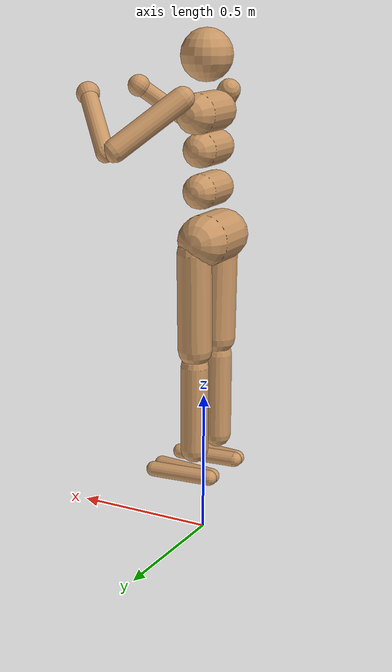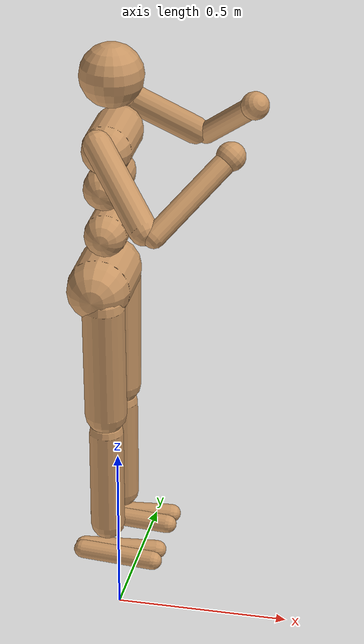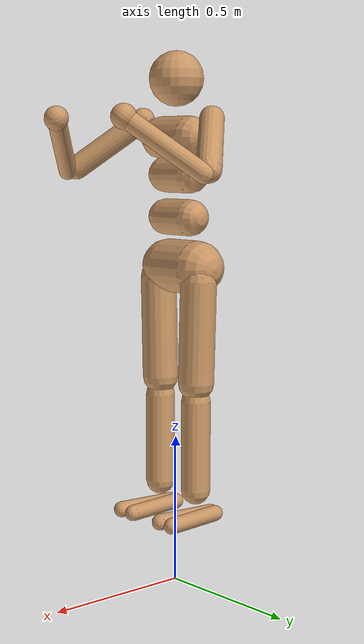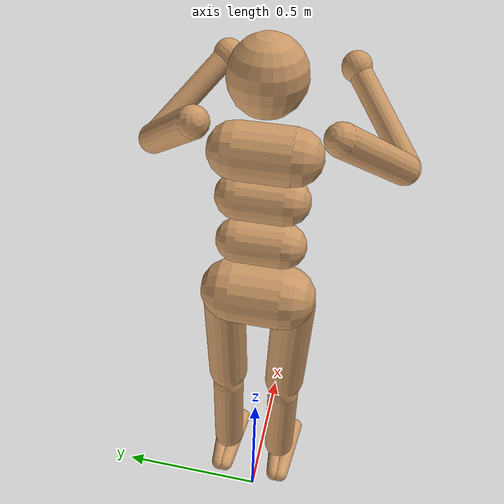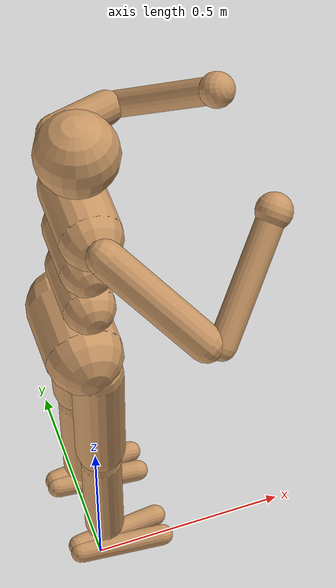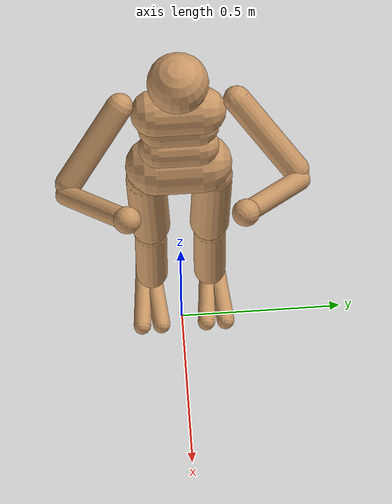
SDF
<sdf version="1.10">
  <model name='humanod_from_mjcf'>
    <static>false</static>
    <self_collide>false</self_collide>
    <allow_auto_disable>true</allow_auto_disable>
    <enable_wind>false</enable_wind>
    <pose>0 0 0 0 0 0</pose>
    <link name='torso'>
      <pose>0 0 1.5 0 0 0</pose>
      <inertial>
        <pose>-0.00386404 0 -0.0463685 0 0.083141200000000012 0</pose>
        <mass>5.8538300000000003</mass>
        <inertia>
          <ixx>0.051274199999999999</ixx>
          <ixy>0</ixy>
          <ixz>0</ixz>
          <iyy>0.031966700000000001</iyy>
          <iyz>0</iyz>
          <izz>0.031149300000000001</izz>
        </inertia>
      </inertial>
      <enable_wind>false</enable_wind>
      <collision name='collision_torso'>
        <pose>0 0 0 1.5708 0 0</pose>
        <geometry>
          <capsule>
            <radius>0.070000000000000007</radius>
            <length>0.14000000000000001</length>
          </capsule>
        </geometry>
        <surface>
          <contact>
            <collide_bitmask>255</collide_bitmask>
          </contact>
          <friction>
            <ode>
              <mu>0.69999999999999996</mu>
            </ode>
          </friction>
        </surface>
      </collision>
      <collision name='collision_upper_waist'>
        <pose>-0.01 0 -0.12 1.5708 0 0</pose>
        <geometry>
          <capsule>
            <radius>0.059999999999999998</radius>
            <length>0.12</length>
          </capsule>
        </geometry>
        <surface>
          <contact>
            <collide_bitmask>255</collide_bitmask>
          </contact>
          <friction>
            <ode>
              <mu>0.69999999999999996</mu>
            </ode>
          </friction>
        </surface>
      </collision>
      <light name='top' type='spot'>
        <pose>0 0 2 0 0 0</pose>
        <cast_shadows>false</cast_shadows>
        <intensity>1</intensity>
        <direction>0 0 -1</direction>
        <diffuse>0.699999988 0.699999988 0.699999988 1</diffuse>
        <specular>0.300000012 0.300000012 0.300000012 1</specular>
        <attenuation>
          <range>10</range>
          <linear>0</linear>
          <constant>1</constant>
          <quadratic>0</quadratic>
        </attenuation>
        <spot>
          <inner_angle>0</inner_angle>
          <outer_angle>1.5708</outer_angle>
          <falloff>2</falloff>
        </spot>
      </light>
      <sensor name='back' type='camera'>
        <pose>-3 0 1 7.8504600000000004e-17 7.8504600000000004e-17 -7.8504600000000004e-17</pose>
        <topic>__default__</topic>
        <update_rate>25</update_rate>
        <enable_metrics>false</enable_metrics>
        <camera>
          <pose>0 0 0 0 0 0</pose>
          <horizontal_fov>1.0469999999999999</horizontal_fov>
          <image>
            <width>320</width>
            <height>240</height>
            <format>RGB_INT8</format>
            <anti_aliasing>4</anti_aliasing>
          </image>
          <clip>
            <near>0.10000000000000001</near>
            <far>100</far>
          </clip>
          <save enabled='false'>
            <path>__default__</path>
          </save>
          <visibility_mask>4294967295</visibility_mask>
          <noise>
            <type>none</type>
            <mean>0</mean>
            <stddev>0</stddev>
          </noise>
          <distortion>
            <k1>0</k1>
            <k2>0</k2>
            <k3>0</k3>
            <p1>0</p1>
            <p2>0</p2>
            <center>0.5 0.5</center>
          </distortion>
          <lens>
            <type>stereographic</type>
            <scale_to_hfov>true</scale_to_hfov>
            <cutoff_angle>1.5708</cutoff_angle>
            <env_texture_size>256</env_texture_size>
          </lens>
        </camera>
      </sensor>
      <sensor name='side' type='camera'>
        <pose>0 -3 1 2.2204499999999999e-16 2.4651903288156619e-32 1.5708</pose>
        <topic>__default__</topic>
        <update_rate>25</update_rate>
        <enable_metrics>false</enable_metrics>
        <camera>
          <pose>0 0 0 0 0 0</pose>
          <horizontal_fov>1.0469999999999999</horizontal_fov>
          <image>
            <width>320</width>
            <height>240</height>
            <format>RGB_INT8</format>
            <anti_aliasing>4</anti_aliasing>
          </image>
          <clip>
            <near>0.10000000000000001</near>
            <far>100</far>
          </clip>
          <save enabled='false'>
            <path>__default__</path>
          </save>
          <visibility_mask>4294967295</visibility_mask>
          <noise>
            <type>none</type>
            <mean>0</mean>
            <stddev>0</stddev>
          </noise>
          <distortion>
            <k1>0</k1>
            <k2>0</k2>
            <k3>0</k3>
            <p1>0</p1>
            <p2>0</p2>
            <center>0.5 0.5</center>
          </distortion>
          <lens>
            <type>stereographic</type>
            <scale_to_hfov>true</scale_to_hfov>
            <cutoff_angle>1.5708</cutoff_angle>
            <env_texture_size>256</env_texture_size>
          </lens>
        </camera>
      </sensor>
      <visual name='visual_torso'>
        <pose>0 0 0 1.5708 0 0</pose>
        <geometry>
          <capsule>
            <radius>0.070000000000000007</radius>
            <length>0.14000000000000001</length>
          </capsule>
        </geometry>
        <cast_shadows>true</cast_shadows>
        <laser_retro>0</laser_retro>
        <transparency>0</transparency>
        <visibility_flags>4294967295</visibility_flags>
        <material>
          <ambient>0.800000012 0.600000024 0.400000006 1</ambient>
          <diffuse>0.800000012 0.600000024 0.400000006 1</diffuse>
          <specular>0.5 0.5 0.5 1</specular>
          <emissive>0 0 0 1</emissive>
          <render_order>0</render_order>
          <lighting>true</lighting>
          <double_sided>false</double_sided>
          <shader type='pixel'/>
        </material>
      </visual>
      <visual name='visual_upper_waist'>
        <pose>-0.01 0 -0.12 1.5708 0 0</pose>
        <geometry>
          <capsule>
            <radius>0.059999999999999998</radius>
            <length>0.12</length>
          </capsule>
        </geometry>
        <cast_shadows>true</cast_shadows>
        <laser_retro>0</laser_retro>
        <transparency>0</transparency>
        <visibility_flags>4294967295</visibility_flags>
        <material>
          <ambient>0.800000012 0.600000024 0.400000006 1</ambient>
          <diffuse>0.800000012 0.600000024 0.400000006 1</diffuse>
          <specular>0.5 0.5 0.5 1</specular>
          <emissive>0 0 0 1</emissive>
          <render_order>0</render_order>
          <lighting>true</lighting>
          <double_sided>false</double_sided>
          <shader type='pixel'/>
        </material>
      </visual>
    </link>
    <link name='head'>
      <pose relative_to='torso'>0 0 0.19 0 0 0</pose>
      <inertial>
        <pose>0 0 0 0 0 0</pose>
        <mass>3.0536300000000001</mass>
        <inertia>
          <ixx>0.0098937499999999998</ixx>
          <ixy>0</ixy>
          <ixz>0</ixz>
          <iyy>0.0098937499999999998</iyy>
          <iyz>0</iyz>
          <izz>0.0098937499999999998</izz>
        </inertia>
      </inertial>
      <enable_wind>false</enable_wind>
      <collision name='collision_head'>
        <pose>0 0 0 0 0 0</pose>
        <geometry>
          <sphere>
            <radius>0.089999999999999997</radius>
          </sphere>
        </geometry>
        <surface>
          <contact>
            <collide_bitmask>255</collide_bitmask>
          </contact>
          <friction>
            <ode>
              <mu>0.69999999999999996</mu>
            </ode>
          </friction>
        </surface>
      </collision>
      <sensor name='egocentric' type='camera'>
        <pose>0.089999999999999997 0 0 2.0641799999999998e-16 0.095166200000000006 -3.2285999999999994e-16</pose>
        <topic>__default__</topic>
        <update_rate>25</update_rate>
        <enable_metrics>false</enable_metrics>
        <camera>
          <pose>0 0 0 0 0 0</pose>
          <horizontal_fov>1.0469999999999999</horizontal_fov>
          <image>
            <width>320</width>
            <height>240</height>
            <format>RGB_INT8</format>
            <anti_aliasing>4</anti_aliasing>
          </image>
          <clip>
            <near>0.10000000000000001</near>
            <far>100</far>
          </clip>
          <save enabled='false'>
            <path>__default__</path>
          </save>
          <visibility_mask>4294967295</visibility_mask>
          <noise>
            <type>none</type>
            <mean>0</mean>
            <stddev>0</stddev>
          </noise>
          <distortion>
            <k1>0</k1>
            <k2>0</k2>
            <k3>0</k3>
            <p1>0</p1>
            <p2>0</p2>
            <center>0.5 0.5</center>
          </distortion>
          <lens>
            <type>stereographic</type>
            <scale_to_hfov>true</scale_to_hfov>
            <cutoff_angle>1.5708</cutoff_angle>
            <env_texture_size>256</env_texture_size>
          </lens>
        </camera>
      </sensor>
      <visual name='visual_head'>
        <pose>0 0 0 0 0 0</pose>
        <geometry>
          <sphere>
            <radius>0.089999999999999997</radius>
          </sphere>
        </geometry>
        <cast_shadows>true</cast_shadows>
        <laser_retro>0</laser_retro>
        <transparency>0</transparency>
        <visibility_flags>4294967295</visibility_flags>
        <material>
          <ambient>0.800000012 0.600000024 0.400000006 1</ambient>
          <diffuse>0.800000012 0.600000024 0.400000006 1</diffuse>
          <specular>0.5 0.5 0.5 1</specular>
          <emissive>0 0 0 1</emissive>
          <render_order>0</render_order>
          <lighting>true</lighting>
          <double_sided>false</double_sided>
          <shader type='pixel'/>
        </material>
      </visual>
    </link>
    <link name='lower_waist'>
      <pose relative_to='torso'>-0.01 0 -0.26000000000000001 0 0 0</pose>
      <inertial>
        <pose>0 0 0 1.5708 0 0</pose>
        <mass>2.2619500000000001</mass>
        <inertia>
          <ixx>0.0098530400000000004</ixx>
          <ixy>0</ixy>
          <ixz>0</ixz>
          <iyy>0.0098530400000000004</iyy>
          <iyz>0</iyz>
          <izz>0.0037457800000000002</izz>
        </inertia>
      </inertial>
      <enable_wind>false</enable_wind>
      <collision name='collision_lower_waist'>
        <pose>0 0 0 1.5708 0 0</pose>
        <geometry>
          <capsule>
            <radius>0.059999999999999998</radius>
            <length>0.12</length>
          </capsule>
        </geometry>
        <surface>
          <contact>
            <collide_bitmask>255</collide_bitmask>
          </contact>
          <friction>
            <ode>
              <mu>0.69999999999999996</mu>
            </ode>
          </friction>
        </surface>
      </collision>
      <visual name='visual_lower_waist'>
        <pose>0 0 0 1.5708 0 0</pose>
        <geometry>
          <capsule>
            <radius>0.059999999999999998</radius>
            <length>0.12</length>
          </capsule>
        </geometry>
        <cast_shadows>true</cast_shadows>
        <laser_retro>0</laser_retro>
        <transparency>0</transparency>
        <visibility_flags>4294967295</visibility_flags>
        <material>
          <ambient>0.800000012 0.600000024 0.400000006 1</ambient>
          <diffuse>0.800000012 0.600000024 0.400000006 1</diffuse>
          <specular>0.5 0.5 0.5 1</specular>
          <emissive>0 0 0 1</emissive>
          <render_order>0</render_order>
          <lighting>true</lighting>
          <double_sided>false</double_sided>
          <shader type='pixel'/>
        </material>
      </visual>
    </link>
    <link name='lower_waist_dummy_0'>
      <pose relative_to='lower_waist'>0 0 0 0 0 0</pose>
      <inertial>
        <pose>0 0 0 0 0 0</pose>
        <mass>9.9999999999999995e-07</mass>
        <inertia>
          <ixx>3.9999999999999998e-07</ixx>
          <ixy>0</ixy>
          <ixz>0</ixz>
          <iyy>3.9999999999999998e-07</iyy>
          <iyz>0</iyz>
          <izz>3.9999999999999998e-07</izz>
        </inertia>
      </inertial>
      <enable_wind>false</enable_wind>
    </link>
    <link name='pelvis'>
      <pose relative_to='lower_waist'>0 0 -0.16500000000000001 0 0 0</pose>
      <inertial>
        <pose>-0.02 0 0 1.5708 0 0</pose>
        <mass>6.6161899999999996</mass>
        <inertia>
          <ixx>0.052318000000000003</ixx>
          <ixy>0</ixy>
          <ixz>0</ixz>
          <iyy>0.052318000000000003</iyy>
          <iyz>0</iyz>
          <izz>0.024322099999999999</izz>
        </inertia>
      </inertial>
      <enable_wind>false</enable_wind>
      <collision name='collision_butt'>
        <pose>-0.02 0 0 1.5708 0 0</pose>
        <geometry>
          <capsule>
            <radius>0.089999999999999997</radius>
            <length>0.14000000000000001</length>
          </capsule>
        </geometry>
        <surface>
          <contact>
            <collide_bitmask>255</collide_bitmask>
          </contact>
          <friction>
            <ode>
              <mu>0.69999999999999996</mu>
            </ode>
          </friction>
        </surface>
      </collision>
      <visual name='visual_butt'>
        <pose>-0.02 0 0 1.5708 0 0</pose>
        <geometry>
          <capsule>
            <radius>0.089999999999999997</radius>
            <length>0.14000000000000001</length>
          </capsule>
        </geometry>
        <cast_shadows>true</cast_shadows>
        <laser_retro>0</laser_retro>
        <transparency>0</transparency>
        <visibility_flags>4294967295</visibility_flags>
        <material>
          <ambient>0.800000012 0.600000024 0.400000006 1</ambient>
          <diffuse>0.800000012 0.600000024 0.400000006 1</diffuse>
          <specular>0.5 0.5 0.5 1</specular>
          <emissive>0 0 0 1</emissive>
          <render_order>0</render_order>
          <lighting>true</lighting>
          <double_sided>false</double_sided>
          <shader type='pixel'/>
        </material>
      </visual>
    </link>
    <link name='right_thigh'>
      <pose relative_to='pelvis'>0 -0.10000000000000001 -0.040000000000000001 0 0 0</pose>
      <inertial>
        <pose>0 0.0050000000000000001 -0.17000000000000001 0.029403299999999997 0 0</pose>
        <mass>4.7517500000000004</mass>
        <inertia>
          <ixx>0.074951699999999996</ixx>
          <ixy>0</ixy>
          <ixz>0</ixz>
          <iyy>0.074951699999999996</iyy>
          <iyz>0</iyz>
          <izz>0.0082274300000000009</izz>
        </inertia>
      </inertial>
      <enable_wind>false</enable_wind>
      <collision name='collision_right_thigh'>
        <pose>0 0.0050000000000000001 -0.17000000000000001 0.029403299999999997 0 0</pose>
        <geometry>
          <capsule>
            <radius>0.059999999999999998</radius>
            <length>0.34014699999999998</length>
          </capsule>
        </geometry>
        <surface>
          <contact>
            <collide_bitmask>255</collide_bitmask>
          </contact>
          <friction>
            <ode>
              <mu>0.69999999999999996</mu>
            </ode>
          </friction>
        </surface>
      </collision>
      <visual name='visual_right_thigh'>
        <pose>0 0.0050000000000000001 -0.17000000000000001 0.029403299999999997 0 0</pose>
        <geometry>
          <capsule>
            <radius>0.059999999999999998</radius>
            <length>0.34014699999999998</length>
          </capsule>
        </geometry>
        <cast_shadows>true</cast_shadows>
        <laser_retro>0</laser_retro>
        <transparency>0</transparency>
        <visibility_flags>4294967295</visibility_flags>
        <material>
          <ambient>0.800000012 0.600000024 0.400000006 1</ambient>
          <diffuse>0.800000012 0.600000024 0.400000006 1</diffuse>
          <specular>0.5 0.5 0.5 1</specular>
          <emissive>0 0 0 1</emissive>
          <render_order>0</render_order>
          <lighting>true</lighting>
          <double_sided>false</double_sided>
          <shader type='pixel'/>
        </material>
      </visual>
    </link>
    <link name='right_thigh_dummy_0'>
      <pose relative_to='right_thigh'>0 0 0 0 0 0</pose>
      <inertial>
        <pose>0 0 0 0 0 0</pose>
        <mass>9.9999999999999995e-07</mass>
        <inertia>
          <ixx>3.9999999999999998e-07</ixx>
          <ixy>0</ixy>
          <ixz>0</ixz>
          <iyy>3.9999999999999998e-07</iyy>
          <iyz>0</iyz>
          <izz>3.9999999999999998e-07</izz>
        </inertia>
      </inertial>
      <enable_wind>false</enable_wind>
    </link>
    <link name='right_thigh_dummy_1'>
      <pose relative_to='right_thigh'>0 0 0 0 0 0</pose>
      <inertial>
        <pose>0 0 0 0 0 0</pose>
        <mass>9.9999999999999995e-07</mass>
        <inertia>
          <ixx>3.9999999999999998e-07</ixx>
          <ixy>0</ixy>
          <ixz>0</ixz>
          <iyy>3.9999999999999998e-07</iyy>
          <iyz>0</iyz>
          <izz>3.9999999999999998e-07</izz>
        </inertia>
      </inertial>
      <enable_wind>false</enable_wind>
    </link>
    <link name='right_shin'>
      <pose relative_to='right_thigh'>0 0.01 -0.40300000000000002 0 0 0</pose>
      <inertial>
        <pose>0 0 -0.14999999999999999 0 0 0</pose>
        <mass>2.7557</mass>
        <inertia>
          <ixx>0.032607999999999998</ixx>
          <ixy>0</ixy>
          <ixz>0</ixz>
          <iyy>0.032607999999999998</iyy>
          <iyz>0</iyz>
          <izz>0.0031898899999999999</izz>
        </inertia>
      </inertial>
      <enable_wind>false</enable_wind>
      <collision name='collision_right_shin'>
        <pose>0 0 -0.14999999999999999 0 0 0</pose>
        <geometry>
          <capsule>
            <radius>0.049000000000000002</radius>
            <length>0.29999999999999999</length>
          </capsule>
        </geometry>
        <surface>
          <contact>
            <collide_bitmask>255</collide_bitmask>
          </contact>
          <friction>
            <ode>
              <mu>0.69999999999999996</mu>
            </ode>
          </friction>
        </surface>
      </collision>
      <visual name='visual_right_shin'>
        <pose>0 0 -0.14999999999999999 0 0 0</pose>
        <geometry>
          <capsule>
            <radius>0.049000000000000002</radius>
            <length>0.29999999999999999</length>
          </capsule>
        </geometry>
        <cast_shadows>true</cast_shadows>
        <laser_retro>0</laser_retro>
        <transparency>0</transparency>
        <visibility_flags>4294967295</visibility_flags>
        <material>
          <ambient>0.800000012 0.600000024 0.400000006 1</ambient>
          <diffuse>0.800000012 0.600000024 0.400000006 1</diffuse>
          <specular>0.5 0.5 0.5 1</specular>
          <emissive>0 0 0 1</emissive>
          <render_order>0</render_order>
          <lighting>true</lighting>
          <double_sided>false</double_sided>
          <shader type='pixel'/>
        </material>
      </visual>
    </link>
    <link name='right_foot'>
      <pose relative_to='right_shin'>0 0 -0.39000000000000001 0 0 0</pose>
      <inertial>
        <pose>0.035000000000000003 -0.01 0 2.6535897933410511e-06 -1.5707926536359933 3.1415926535897931</pose>
        <mass>1.13114</mass>
        <inertia>
          <ixx>0.0064464600000000002</ixx>
          <ixy>0</ixy>
          <ixz>0</ixz>
          <iyy>0.0059437200000000004</iyy>
          <iyz>0</iyz>
          <izz>0.00090301699999999999</izz>
        </inertia>
      </inertial>
      <enable_wind>false</enable_wind>
      <collision name='collision_right_right_foot'>
        <pose>0.035000000000000003 -0.029999999999999999 0 -1.5708000000000009 -1.47584 1.4758400000000012</pose>
        <geometry>
          <capsule>
            <radius>0.027</radius>
            <length>0.21095</length>
          </capsule>
        </geometry>
        <surface>
          <contact>
            <collide_bitmask>255</collide_bitmask>
          </contact>
          <friction>
            <ode>
              <mu>0.69999999999999996</mu>
            </ode>
          </friction>
        </surface>
      </collision>
      <collision name='collision_left_right_foot'>
        <pose>0.035000000000000003 0.01 0 1.5708000000000009 -1.47584 -1.4758400000000012</pose>
        <geometry>
          <capsule>
            <radius>0.027</radius>
            <length>0.21095</length>
          </capsule>
        </geometry>
        <surface>
          <contact>
            <collide_bitmask>255</collide_bitmask>
          </contact>
          <friction>
            <ode>
              <mu>0.69999999999999996</mu>
            </ode>
          </friction>
        </surface>
      </collision>
      <visual name='visual_right_right_foot'>
        <pose>0.035000000000000003 -0.029999999999999999 0 -1.5708000000000009 -1.47584 1.4758400000000012</pose>
        <geometry>
          <capsule>
            <radius>0.027</radius>
            <length>0.21095</length>
          </capsule>
        </geometry>
        <cast_shadows>true</cast_shadows>
        <laser_retro>0</laser_retro>
        <transparency>0</transparency>
        <visibility_flags>4294967295</visibility_flags>
        <material>
          <ambient>0.800000012 0.600000024 0.400000006 1</ambient>
          <diffuse>0.800000012 0.600000024 0.400000006 1</diffuse>
          <specular>0.5 0.5 0.5 1</specular>
          <emissive>0 0 0 1</emissive>
          <render_order>0</render_order>
          <lighting>true</lighting>
          <double_sided>false</double_sided>
          <shader type='pixel'/>
        </material>
      </visual>
      <visual name='visual_left_right_foot'>
        <pose>0.035000000000000003 0.01 0 1.5708000000000009 -1.47584 -1.4758400000000012</pose>
        <geometry>
          <capsule>
            <radius>0.027</radius>
            <length>0.21095</length>
          </capsule>
        </geometry>
        <cast_shadows>true</cast_shadows>
        <laser_retro>0</laser_retro>
        <transparency>0</transparency>
        <visibility_flags>4294967295</visibility_flags>
        <material>
          <ambient>0.800000012 0.600000024 0.400000006 1</ambient>
          <diffuse>0.800000012 0.600000024 0.400000006 1</diffuse>
          <specular>0.5 0.5 0.5 1</specular>
          <emissive>0 0 0 1</emissive>
          <render_order>0</render_order>
          <lighting>true</lighting>
          <double_sided>false</double_sided>
          <shader type='pixel'/>
        </material>
      </visual>
    </link>
    <link name='right_foot_dummy_0'>
      <pose relative_to='right_foot'>0 0 0 0 0 0</pose>
      <inertial>
        <pose>0 0 0 0 0 0</pose>
        <mass>9.9999999999999995e-07</mass>
        <inertia>
          <ixx>3.9999999999999998e-07</ixx>
          <ixy>0</ixy>
          <ixz>0</ixz>
          <iyy>3.9999999999999998e-07</iyy>
          <iyz>0</iyz>
          <izz>3.9999999999999998e-07</izz>
        </inertia>
      </inertial>
      <enable_wind>false</enable_wind>
    </link>
    <link name='left_thigh'>
      <pose relative_to='pelvis'>0 0.10000000000000001 -0.040000000000000001 0 0 0</pose>
      <inertial>
        <pose>0 -0.0050000000000000001 -0.17000000000000001 -0.029403299999999997 0 0</pose>
        <mass>4.7517500000000004</mass>
        <inertia>
          <ixx>0.074951699999999996</ixx>
          <ixy>0</ixy>
          <ixz>0</ixz>
          <iyy>0.074951699999999996</iyy>
          <iyz>0</iyz>
          <izz>0.0082274300000000009</izz>
        </inertia>
      </inertial>
      <enable_wind>false</enable_wind>
      <collision name='collision_left_thigh'>
        <pose>0 -0.0050000000000000001 -0.17000000000000001 -0.029403299999999997 0 0</pose>
        <geometry>
          <capsule>
            <radius>0.059999999999999998</radius>
            <length>0.34014699999999998</length>
          </capsule>
        </geometry>
        <surface>
          <contact>
            <collide_bitmask>255</collide_bitmask>
          </contact>
          <friction>
            <ode>
              <mu>0.69999999999999996</mu>
            </ode>
          </friction>
        </surface>
      </collision>
      <visual name='visual_left_thigh'>
        <pose>0 -0.0050000000000000001 -0.17000000000000001 -0.029403299999999997 0 0</pose>
        <geometry>
          <capsule>
            <radius>0.059999999999999998</radius>
            <length>0.34014699999999998</length>
          </capsule>
        </geometry>
        <cast_shadows>true</cast_shadows>
        <laser_retro>0</laser_retro>
        <transparency>0</transparency>
        <visibility_flags>4294967295</visibility_flags>
        <material>
          <ambient>0.800000012 0.600000024 0.400000006 1</ambient>
          <diffuse>0.800000012 0.600000024 0.400000006 1</diffuse>
          <specular>0.5 0.5 0.5 1</specular>
          <emissive>0 0 0 1</emissive>
          <render_order>0</render_order>
          <lighting>true</lighting>
          <double_sided>false</double_sided>
          <shader type='pixel'/>
        </material>
      </visual>
    </link>
    <link name='left_thigh_dummy_0'>
      <pose relative_to='left_thigh'>0 0 0 0 0 0</pose>
      <inertial>
        <pose>0 0 0 0 0 0</pose>
        <mass>9.9999999999999995e-07</mass>
        <inertia>
          <ixx>3.9999999999999998e-07</ixx>
          <ixy>0</ixy>
          <ixz>0</ixz>
          <iyy>3.9999999999999998e-07</iyy>
          <iyz>0</iyz>
          <izz>3.9999999999999998e-07</izz>
        </inertia>
      </inertial>
      <enable_wind>false</enable_wind>
    </link>
    <link name='left_thigh_dummy_1'>
      <pose relative_to='left_thigh'>0 0 0 0 0 0</pose>
      <inertial>
        <pose>0 0 0 0 0 0</pose>
        <mass>9.9999999999999995e-07</mass>
        <inertia>
          <ixx>3.9999999999999998e-07</ixx>
          <ixy>0</ixy>
          <ixz>0</ixz>
          <iyy>3.9999999999999998e-07</iyy>
          <iyz>0</iyz>
          <izz>3.9999999999999998e-07</izz>
        </inertia>
      </inertial>
      <enable_wind>false</enable_wind>
    </link>
    <link name='left_shin'>
      <pose relative_to='left_thigh'>0 -0.01 -0.40300000000000002 0 0 0</pose>
      <inertial>
        <pose>0 0 -0.14999999999999999 0 0 0</pose>
        <mass>2.7557</mass>
        <inertia>
          <ixx>0.032607999999999998</ixx>
          <ixy>0</ixy>
          <ixz>0</ixz>
          <iyy>0.032607999999999998</iyy>
          <iyz>0</iyz>
          <izz>0.0031898899999999999</izz>
        </inertia>
      </inertial>
      <enable_wind>false</enable_wind>
      <collision name='collision_left_shin'>
        <pose>0 0 -0.14999999999999999 0 0 0</pose>
        <geometry>
          <capsule>
            <radius>0.049000000000000002</radius>
            <length>0.29999999999999999</length>
          </capsule>
        </geometry>
        <surface>
          <contact>
            <collide_bitmask>255</collide_bitmask>
          </contact>
          <friction>
            <ode>
              <mu>0.69999999999999996</mu>
            </ode>
          </friction>
        </surface>
      </collision>
      <visual name='visual_left_shin'>
        <pose>0 0 -0.14999999999999999 0 0 0</pose>
        <geometry>
          <capsule>
            <radius>0.049000000000000002</radius>
            <length>0.29999999999999999</length>
          </capsule>
        </geometry>
        <cast_shadows>true</cast_shadows>
        <laser_retro>0</laser_retro>
        <transparency>0</transparency>
        <visibility_flags>4294967295</visibility_flags>
        <material>
          <ambient>0.800000012 0.600000024 0.400000006 1</ambient>
          <diffuse>0.800000012 0.600000024 0.400000006 1</diffuse>
          <specular>0.5 0.5 0.5 1</specular>
          <emissive>0 0 0 1</emissive>
          <render_order>0</render_order>
          <lighting>true</lighting>
          <double_sided>false</double_sided>
          <shader type='pixel'/>
        </material>
      </visual>
    </link>
    <link name='left_foot'>
      <pose relative_to='left_shin'>0 0 -0.39000000000000001 0 0 0</pose>
      <inertial>
        <pose>0.035000000000000003 0.01 0 2.6535897933410511e-06 -1.5707926536359933 3.1415926535897931</pose>
        <mass>1.13114</mass>
        <inertia>
          <ixx>0.0064464600000000002</ixx>
          <ixy>0</ixy>
          <ixz>0</ixz>
          <iyy>0.0059437200000000004</iyy>
          <iyz>0</iyz>
          <izz>0.00090301699999999999</izz>
        </inertia>
      </inertial>
      <enable_wind>false</enable_wind>
      <collision name='collision_left_left_foot'>
        <pose>0.035000000000000003 0.029999999999999999 0 1.5708000000000009 -1.47584 -1.4758400000000012</pose>
        <geometry>
          <capsule>
            <radius>0.027</radius>
            <length>0.21095</length>
          </capsule>
        </geometry>
        <surface>
          <contact>
            <collide_bitmask>255</collide_bitmask>
          </contact>
          <friction>
            <ode>
              <mu>0.69999999999999996</mu>
            </ode>
          </friction>
        </surface>
      </collision>
      <collision name='collision_right_left_foot'>
        <pose>0.035000000000000003 -0.01 0 -1.5708000000000009 -1.47584 1.4758400000000012</pose>
        <geometry>
          <capsule>
            <radius>0.027</radius>
            <length>0.21095</length>
          </capsule>
        </geometry>
        <surface>
          <contact>
            <collide_bitmask>255</collide_bitmask>
          </contact>
          <friction>
            <ode>
              <mu>0.69999999999999996</mu>
            </ode>
          </friction>
        </surface>
      </collision>
      <visual name='visual_left_left_foot'>
        <pose>0.035000000000000003 0.029999999999999999 0 1.5708000000000009 -1.47584 -1.4758400000000012</pose>
        <geometry>
          <capsule>
            <radius>0.027</radius>
            <length>0.21095</length>
          </capsule>
        </geometry>
        <cast_shadows>true</cast_shadows>
        <laser_retro>0</laser_retro>
        <transparency>0</transparency>
        <visibility_flags>4294967295</visibility_flags>
        <material>
          <ambient>0.800000012 0.600000024 0.400000006 1</ambient>
          <diffuse>0.800000012 0.600000024 0.400000006 1</diffuse>
          <specular>0.5 0.5 0.5 1</specular>
          <emissive>0 0 0 1</emissive>
          <render_order>0</render_order>
          <lighting>true</lighting>
          <double_sided>false</double_sided>
          <shader type='pixel'/>
        </material>
      </visual>
      <visual name='visual_right_left_foot'>
        <pose>0.035000000000000003 -0.01 0 -1.5708000000000009 -1.47584 1.4758400000000012</pose>
        <geometry>
          <capsule>
            <radius>0.027</radius>
            <length>0.21095</length>
          </capsule>
        </geometry>
        <cast_shadows>true</cast_shadows>
        <laser_retro>0</laser_retro>
        <transparency>0</transparency>
        <visibility_flags>4294967295</visibility_flags>
        <material>
          <ambient>0.800000012 0.600000024 0.400000006 1</ambient>
          <diffuse>0.800000012 0.600000024 0.400000006 1</diffuse>
          <specular>0.5 0.5 0.5 1</specular>
          <emissive>0 0 0 1</emissive>
          <render_order>0</render_order>
          <lighting>true</lighting>
          <double_sided>false</double_sided>
          <shader type='pixel'/>
        </material>
      </visual>
    </link>
    <link name='left_foot_dummy_0'>
      <pose relative_to='left_foot'>0 0 0 0 0 0</pose>
      <inertial>
        <pose>0 0 0 0 0 0</pose>
        <mass>9.9999999999999995e-07</mass>
        <inertia>
          <ixx>3.9999999999999998e-07</ixx>
          <ixy>0</ixy>
          <ixz>0</ixz>
          <iyy>3.9999999999999998e-07</iyy>
          <iyz>0</iyz>
          <izz>3.9999999999999998e-07</izz>
        </inertia>
      </inertial>
      <enable_wind>false</enable_wind>
    </link>
    <link name='right_upper_arm'>
      <pose relative_to='torso'>0 -0.17000000000000001 0.059999999999999998 0 0 0</pose>
      <inertial>
        <pose>0.080000000000000002 -0.080000000000000002 -0.080000000000000002 -0.78539800000000026 -0.61548000000000003 0.26179900000000006</pose>
        <mass>1.6610799999999999</mass>
        <inertia>
          <ixx>0.015905499999999999</ixx>
          <ixy>0</ixy>
          <ixz>0</ixz>
          <iyy>0.015905499999999999</iyy>
          <iyz>0</iyz>
          <izz>0.00128597</izz>
        </inertia>
      </inertial>
      <enable_wind>false</enable_wind>
      <collision name='collision_right_upper_arm'>
        <pose>0.080000000000000002 -0.080000000000000002 -0.080000000000000002 -0.78539800000000026 -0.61548000000000003 0.26179900000000006</pose>
        <geometry>
          <capsule>
            <radius>0.040000000000000001</radius>
            <length>0.27712799999999999</length>
          </capsule>
        </geometry>
        <surface>
          <contact>
            <collide_bitmask>255</collide_bitmask>
          </contact>
          <friction>
            <ode>
              <mu>0.69999999999999996</mu>
            </ode>
          </friction>
        </surface>
      </collision>
      <visual name='visual_right_upper_arm'>
        <pose>0.080000000000000002 -0.080000000000000002 -0.080000000000000002 -0.78539800000000026 -0.61548000000000003 0.26179900000000006</pose>
        <geometry>
          <capsule>
            <radius>0.040000000000000001</radius>
            <length>0.27712799999999999</length>
          </capsule>
        </geometry>
        <cast_shadows>true</cast_shadows>
        <laser_retro>0</laser_retro>
        <transparency>0</transparency>
        <visibility_flags>4294967295</visibility_flags>
        <material>
          <ambient>0.800000012 0.600000024 0.400000006 1</ambient>
          <diffuse>0.800000012 0.600000024 0.400000006 1</diffuse>
          <specular>0.5 0.5 0.5 1</specular>
          <emissive>0 0 0 1</emissive>
          <render_order>0</render_order>
          <lighting>true</lighting>
          <double_sided>false</double_sided>
          <shader type='pixel'/>
        </material>
      </visual>
    </link>
    <link name='right_upper_arm_dummy_0'>
      <pose relative_to='right_upper_arm'>0 0 0 0 0 0</pose>
      <inertial>
        <pose>0 0 0 0 0 0</pose>
        <mass>9.9999999999999995e-07</mass>
        <inertia>
          <ixx>3.9999999999999998e-07</ixx>
          <ixy>0</ixy>
          <ixz>0</ixz>
          <iyy>3.9999999999999998e-07</iyy>
          <iyz>0</iyz>
          <izz>3.9999999999999998e-07</izz>
        </inertia>
      </inertial>
      <enable_wind>false</enable_wind>
    </link>
    <link name='right_lower_arm'>
      <pose relative_to='right_upper_arm'>0.17999999999999999 -0.17999999999999999 -0.17999999999999999 0 0 0</pose>
      <inertial>
        <pose>0.089999999999999997 0.089999999999999997 0.089999999999999997 2.3561899999999998 -0.61548000000000003 -1.3089999999999999</pose>
        <mass>0.96145800000000003</mass>
        <inertia>
          <ixx>0.0084016200000000003</ixx>
          <ixy>0</ixy>
          <ixz>0</ixz>
          <iyy>0.0084016200000000003</iyy>
          <iyz>0</iyz>
          <izz>0.00044998800000000002</izz>
        </inertia>
      </inertial>
      <enable_wind>false</enable_wind>
      <collision name='collision_right_lower_arm'>
        <pose>0.089999999999999997 0.089999999999999997 0.089999999999999997 2.3561899999999998 -0.61548000000000003 -1.3089999999999999</pose>
        <geometry>
          <capsule>
            <radius>0.031</radius>
            <length>0.27712799999999999</length>
          </capsule>
        </geometry>
        <surface>
          <contact>
            <collide_bitmask>255</collide_bitmask>
          </contact>
          <friction>
            <ode>
              <mu>0.69999999999999996</mu>
            </ode>
          </friction>
        </surface>
      </collision>
      <visual name='visual_right_lower_arm'>
        <pose>0.089999999999999997 0.089999999999999997 0.089999999999999997 2.3561899999999998 -0.61548000000000003 -1.3089999999999999</pose>
        <geometry>
          <capsule>
            <radius>0.031</radius>
            <length>0.27712799999999999</length>
          </capsule>
        </geometry>
        <cast_shadows>true</cast_shadows>
        <laser_retro>0</laser_retro>
        <transparency>0</transparency>
        <visibility_flags>4294967295</visibility_flags>
        <material>
          <ambient>0.800000012 0.600000024 0.400000006 1</ambient>
          <diffuse>0.800000012 0.600000024 0.400000006 1</diffuse>
          <specular>0.5 0.5 0.5 1</specular>
          <emissive>0 0 0 1</emissive>
          <render_order>0</render_order>
          <lighting>true</lighting>
          <double_sided>false</double_sided>
          <shader type='pixel'/>
        </material>
      </visual>
    </link>
    <link name='right_hand'>
      <pose relative_to='right_lower_arm'>0.17999999999999999 0.17999999999999999 0.17999999999999999 0 0 0</pose>
      <inertial>
        <pose>0 0 0 -0.78539800000000026 0.61548000000000003 -0.26179900000000006</pose>
        <mass>0.26808300000000002</mass>
        <inertia>
          <ixx>0.00017157300000000001</ixx>
          <ixy>0</ixy>
          <ixz>0</ixz>
          <iyy>0.00017157300000000001</iyy>
          <iyz>0</iyz>
          <izz>0.00017157300000000001</izz>
        </inertia>
      </inertial>
      <enable_wind>false</enable_wind>
      <collision name='collision_right_hand'>
        <pose>0 0 0 -0.78539800000000026 0.61548000000000003 -0.26179900000000006</pose>
        <geometry>
          <sphere>
            <radius>0.040000000000000001</radius>
          </sphere>
        </geometry>
        <surface>
          <contact>
            <collide_bitmask>255</collide_bitmask>
          </contact>
          <friction>
            <ode>
              <mu>0.69999999999999996</mu>
            </ode>
          </friction>
        </surface>
      </collision>
      <visual name='visual_right_hand'>
        <pose>0 0 0 -0.78539800000000026 0.61548000000000003 -0.26179900000000006</pose>
        <geometry>
          <sphere>
            <radius>0.040000000000000001</radius>
          </sphere>
        </geometry>
        <cast_shadows>true</cast_shadows>
        <laser_retro>0</laser_retro>
        <transparency>0</transparency>
        <visibility_flags>4294967295</visibility_flags>
        <material>
          <ambient>0.800000012 0.600000024 0.400000006 1</ambient>
          <diffuse>0.800000012 0.600000024 0.400000006 1</diffuse>
          <specular>0.5 0.5 0.5 1</specular>
          <emissive>0 0 0 1</emissive>
          <render_order>0</render_order>
          <lighting>true</lighting>
          <double_sided>false</double_sided>
          <shader type='pixel'/>
        </material>
      </visual>
    </link>
    <link name='left_upper_arm'>
      <pose relative_to='torso'>0 0.17000000000000001 0.059999999999999998 0 0 0</pose>
      <inertial>
        <pose>0.080000000000000002 0.080000000000000002 -0.080000000000000002 0.78539800000000026 -0.61548000000000003 -0.26179900000000006</pose>
        <mass>1.6610799999999999</mass>
        <inertia>
          <ixx>0.015905499999999999</ixx>
          <ixy>0</ixy>
          <ixz>0</ixz>
          <iyy>0.015905499999999999</iyy>
          <iyz>0</iyz>
          <izz>0.00128597</izz>
        </inertia>
      </inertial>
      <enable_wind>false</enable_wind>
      <collision name='collision_left_upper_arm'>
        <pose>0.080000000000000002 0.080000000000000002 -0.080000000000000002 0.78539800000000026 -0.61548000000000003 -0.26179900000000006</pose>
        <geometry>
          <capsule>
            <radius>0.040000000000000001</radius>
            <length>0.27712799999999999</length>
          </capsule>
        </geometry>
        <surface>
          <contact>
            <collide_bitmask>255</collide_bitmask>
          </contact>
          <friction>
            <ode>
              <mu>0.69999999999999996</mu>
            </ode>
          </friction>
        </surface>
      </collision>
      <visual name='visual_left_upper_arm'>
        <pose>0.080000000000000002 0.080000000000000002 -0.080000000000000002 0.78539800000000026 -0.61548000000000003 -0.26179900000000006</pose>
        <geometry>
          <capsule>
            <radius>0.040000000000000001</radius>
            <length>0.27712799999999999</length>
          </capsule>
        </geometry>
        <cast_shadows>true</cast_shadows>
        <laser_retro>0</laser_retro>
        <transparency>0</transparency>
        <visibility_flags>4294967295</visibility_flags>
        <material>
          <ambient>0.800000012 0.600000024 0.400000006 1</ambient>
          <diffuse>0.800000012 0.600000024 0.400000006 1</diffuse>
          <specular>0.5 0.5 0.5 1</specular>
          <emissive>0 0 0 1</emissive>
          <render_order>0</render_order>
          <lighting>true</lighting>
          <double_sided>false</double_sided>
          <shader type='pixel'/>
        </material>
      </visual>
    </link>
    <link name='left_upper_arm_dummy_0'>
      <pose relative_to='left_upper_arm'>0 0 0 0 0 0</pose>
      <inertial>
        <pose>0 0 0 0 0 0</pose>
        <mass>9.9999999999999995e-07</mass>
        <inertia>
          <ixx>3.9999999999999998e-07</ixx>
          <ixy>0</ixy>
          <ixz>0</ixz>
          <iyy>3.9999999999999998e-07</iyy>
          <iyz>0</iyz>
          <izz>3.9999999999999998e-07</izz>
        </inertia>
      </inertial>
      <enable_wind>false</enable_wind>
    </link>
    <link name='left_lower_arm'>
      <pose relative_to='left_upper_arm'>0.17999999999999999 0.17999999999999999 -0.17999999999999999 0 0 0</pose>
      <inertial>
        <pose>0.089999999999999997 -0.089999999999999997 0.089999999999999997 -2.3561899999999998 -0.61548000000000003 1.3089999999999999</pose>
        <mass>0.96145800000000003</mass>
        <inertia>
          <ixx>0.0084016200000000003</ixx>
          <ixy>0</ixy>
          <ixz>0</ixz>
          <iyy>0.0084016200000000003</iyy>
          <iyz>0</iyz>
          <izz>0.00044998800000000002</izz>
        </inertia>
      </inertial>
      <enable_wind>false</enable_wind>
      <collision name='collision_left_lower_arm'>
        <pose>0.089999999999999997 -0.089999999999999997 0.089999999999999997 -2.3561899999999998 -0.61548000000000003 1.3089999999999999</pose>
        <geometry>
          <capsule>
            <radius>0.031</radius>
            <length>0.27712799999999999</length>
          </capsule>
        </geometry>
        <surface>
          <contact>
            <collide_bitmask>255</collide_bitmask>
          </contact>
          <friction>
            <ode>
              <mu>0.69999999999999996</mu>
            </ode>
          </friction>
        </surface>
      </collision>
      <visual name='visual_left_lower_arm'>
        <pose>0.089999999999999997 -0.089999999999999997 0.089999999999999997 -2.3561899999999998 -0.61548000000000003 1.3089999999999999</pose>
        <geometry>
          <capsule>
            <radius>0.031</radius>
            <length>0.27712799999999999</length>
          </capsule>
        </geometry>
        <cast_shadows>true</cast_shadows>
        <laser_retro>0</laser_retro>
        <transparency>0</transparency>
        <visibility_flags>4294967295</visibility_flags>
        <material>
          <ambient>0.800000012 0.600000024 0.400000006 1</ambient>
          <diffuse>0.800000012 0.600000024 0.400000006 1</diffuse>
          <specular>0.5 0.5 0.5 1</specular>
          <emissive>0 0 0 1</emissive>
          <render_order>0</render_order>
          <lighting>true</lighting>
          <double_sided>false</double_sided>
          <shader type='pixel'/>
        </material>
      </visual>
    </link>
    <link name='left_hand'>
      <pose relative_to='left_lower_arm'>0.17999999999999999 -0.17999999999999999 0.17999999999999999 0 0 0</pose>
      <inertial>
        <pose>0 0 0 0.78539800000000026 0.61548000000000003 0.26179900000000006</pose>
        <mass>0.26808300000000002</mass>
        <inertia>
          <ixx>0.00017157300000000001</ixx>
          <ixy>0</ixy>
          <ixz>0</ixz>
          <iyy>0.00017157300000000001</iyy>
          <iyz>0</iyz>
          <izz>0.00017157300000000001</izz>
        </inertia>
      </inertial>
      <enable_wind>false</enable_wind>
      <collision name='collision_left_hand'>
        <pose>0 0 0 0.78539800000000026 0.61548000000000003 0.26179900000000006</pose>
        <geometry>
          <sphere>
            <radius>0.040000000000000001</radius>
          </sphere>
        </geometry>
        <surface>
          <contact>
            <collide_bitmask>255</collide_bitmask>
          </contact>
          <friction>
            <ode>
              <mu>0.69999999999999996</mu>
            </ode>
          </friction>
        </surface>
      </collision>
      <visual name='visual_left_hand'>
        <pose>0 0 0 0.78539800000000026 0.61548000000000003 0.26179900000000006</pose>
        <geometry>
          <sphere>
            <radius>0.040000000000000001</radius>
          </sphere>
        </geometry>
        <cast_shadows>true</cast_shadows>
        <laser_retro>0</laser_retro>
        <transparency>0</transparency>
        <visibility_flags>4294967295</visibility_flags>
        <material>
          <ambient>0.800000012 0.600000024 0.400000006 1</ambient>
          <diffuse>0.800000012 0.600000024 0.400000006 1</diffuse>
          <specular>0.5 0.5 0.5 1</specular>
          <emissive>0 0 0 1</emissive>
          <render_order>0</render_order>
          <lighting>true</lighting>
          <double_sided>false</double_sided>
          <shader type='pixel'/>
        </material>
      </visual>
    </link>
    <joint name='fixed_torso_head_joint' type='fixed'>
      <pose>0 0 0 0 0 0</pose>
      <parent>torso</parent>
      <child>head</child>
    </joint>
    <joint name='joint_abdomen_z' type='revolute'>
      <pose>0 0 0.065000000000000002 0 0 0</pose>
      <parent>torso</parent>
      <child>lower_waist_dummy_0</child>
      <axis>
        <xyz>0 0 1</xyz>
        <limit>
          <lower>-0.78539800000000004</lower>
          <upper>0.78539800000000004</upper>
          <effort>inf</effort>
          <velocity>inf</velocity>
          <stiffness>100000000</stiffness>
          <dissipation>1</dissipation>
        </limit>
        <dynamics>
          <spring_reference>0</spring_reference>
          <spring_stiffness>20</spring_stiffness>
          <damping>5</damping>
          <friction>0</friction>
        </dynamics>
      </axis>
    </joint>
    <joint name='joint_abdomen_y' type='revolute'>
      <pose>0 0 0.065000000000000002 0 0 0</pose>
      <parent>lower_waist_dummy_0</parent>
      <child>lower_waist</child>
      <axis>
        <xyz>0 1 0</xyz>
        <limit>
          <lower>-1.3089999999999999</lower>
          <upper>0.52359900000000004</upper>
          <effort>inf</effort>
          <velocity>inf</velocity>
          <stiffness>100000000</stiffness>
          <dissipation>1</dissipation>
        </limit>
        <dynamics>
          <spring_reference>0</spring_reference>
          <spring_stiffness>10</spring_stiffness>
          <damping>5</damping>
          <friction>0</friction>
        </dynamics>
      </axis>
    </joint>
    <joint name='joint_abdomen_x' type='revolute'>
      <pose>0 0 0.10000000000000001 0 0 0</pose>
      <parent>lower_waist</parent>
      <child>pelvis</child>
      <axis>
        <xyz>1 0 0</xyz>
        <limit>
          <lower>-0.61086499999999999</lower>
          <upper>0.61086499999999999</upper>
          <effort>inf</effort>
          <velocity>inf</velocity>
          <stiffness>100000000</stiffness>
          <dissipation>1</dissipation>
        </limit>
        <dynamics>
          <spring_reference>0</spring_reference>
          <spring_stiffness>10</spring_stiffness>
          <damping>5</damping>
          <friction>0</friction>
        </dynamics>
      </axis>
    </joint>
    <joint name='joint_right_hip_x' type='revolute'>
      <pose>0 0 0 0 0 0</pose>
      <parent>pelvis</parent>
      <child>right_thigh_dummy_0</child>
      <axis>
        <xyz>1 0 0</xyz>
        <limit>
          <lower>-0.436332</lower>
          <upper>0.087266499999999997</upper>
          <effort>inf</effort>
          <velocity>inf</velocity>
          <stiffness>100000000</stiffness>
          <dissipation>1</dissipation>
        </limit>
        <dynamics>
          <spring_reference>0</spring_reference>
          <spring_stiffness>10</spring_stiffness>
          <damping>5</damping>
          <friction>0</friction>
        </dynamics>
      </axis>
    </joint>
    <joint name='joint_right_hip_z' type='revolute'>
      <pose>0 0 0 0 0 0</pose>
      <parent>right_thigh_dummy_0</parent>
      <child>right_thigh_dummy_1</child>
      <axis>
        <xyz>0 0 1</xyz>
        <limit>
          <lower>-1.0471999999999999</lower>
          <upper>0.61086499999999999</upper>
          <effort>inf</effort>
          <velocity>inf</velocity>
          <stiffness>100000000</stiffness>
          <dissipation>1</dissipation>
        </limit>
        <dynamics>
          <spring_reference>0</spring_reference>
          <spring_stiffness>10</spring_stiffness>
          <damping>5</damping>
          <friction>0</friction>
        </dynamics>
      </axis>
    </joint>
    <joint name='joint_right_hip_y' type='revolute'>
      <pose>0 0 0 0 0 0</pose>
      <parent>right_thigh_dummy_1</parent>
      <child>right_thigh</child>
      <axis>
        <xyz>0 1 0</xyz>
        <limit>
          <lower>-1.9198599999999999</lower>
          <upper>0.34906599999999999</upper>
          <effort>inf</effort>
          <velocity>inf</velocity>
          <stiffness>100000000</stiffness>
          <dissipation>1</dissipation>
        </limit>
        <dynamics>
          <spring_reference>0</spring_reference>
          <spring_stiffness>20</spring_stiffness>
          <damping>5</damping>
          <friction>0</friction>
        </dynamics>
      </axis>
    </joint>
    <joint name='joint_right_knee' type='revolute'>
      <pose>0 0 0.02 0 0 0</pose>
      <parent>right_thigh</parent>
      <child>right_shin</child>
      <axis>
        <xyz>0 -1 0</xyz>
        <limit>
          <lower>-2.7925300000000002</lower>
          <upper>0.034906600000000003</upper>
          <effort>inf</effort>
          <velocity>inf</velocity>
          <stiffness>100000000</stiffness>
          <dissipation>1</dissipation>
        </limit>
        <dynamics>
          <spring_reference>0</spring_reference>
          <spring_stiffness>1</spring_stiffness>
          <damping>0.20000000000000001</damping>
          <friction>0</friction>
        </dynamics>
      </axis>
    </joint>
    <joint name='joint_right_ankle_y' type='revolute'>
      <pose>0 0 0.080000000000000002 0 0 0</pose>
      <parent>right_shin</parent>
      <child>right_foot_dummy_0</child>
      <axis>
        <xyz>0 1 0</xyz>
        <limit>
          <lower>-0.87266500000000002</lower>
          <upper>0.87266500000000002</upper>
          <effort>inf</effort>
          <velocity>inf</velocity>
          <stiffness>100000000</stiffness>
          <dissipation>1</dissipation>
        </limit>
        <dynamics>
          <spring_reference>0</spring_reference>
          <spring_stiffness>6</spring_stiffness>
          <damping>0.20000000000000001</damping>
          <friction>0</friction>
        </dynamics>
      </axis>
    </joint>
    <joint name='joint_right_ankle_x' type='revolute'>
      <pose>0 0 0.040000000000000001 0 0 0</pose>
      <parent>right_foot_dummy_0</parent>
      <child>right_foot</child>
      <axis>
        <xyz>0.89442699999999997 0 0.447214</xyz>
        <limit>
          <lower>-0.87266500000000002</lower>
          <upper>0.87266500000000002</upper>
          <effort>inf</effort>
          <velocity>inf</velocity>
          <stiffness>100000000</stiffness>
          <dissipation>1</dissipation>
        </limit>
        <dynamics>
          <spring_reference>0</spring_reference>
          <spring_stiffness>3</spring_stiffness>
          <damping>0.20000000000000001</damping>
          <friction>0</friction>
        </dynamics>
      </axis>
    </joint>
    <joint name='joint_left_hip_x' type='revolute'>
      <pose>0 0 0 0 0 0</pose>
      <parent>pelvis</parent>
      <child>left_thigh_dummy_0</child>
      <axis>
        <xyz>-1 0 0</xyz>
        <limit>
          <lower>-0.436332</lower>
          <upper>0.087266499999999997</upper>
          <effort>inf</effort>
          <velocity>inf</velocity>
          <stiffness>100000000</stiffness>
          <dissipation>1</dissipation>
        </limit>
        <dynamics>
          <spring_reference>0</spring_reference>
          <spring_stiffness>10</spring_stiffness>
          <damping>5</damping>
          <friction>0</friction>
        </dynamics>
      </axis>
    </joint>
    <joint name='joint_left_hip_z' type='revolute'>
      <pose>0 0 0 0 0 0</pose>
      <parent>left_thigh_dummy_0</parent>
      <child>left_thigh_dummy_1</child>
      <axis>
        <xyz>0 0 -1</xyz>
        <limit>
          <lower>-1.0471999999999999</lower>
          <upper>0.61086499999999999</upper>
          <effort>inf</effort>
          <velocity>inf</velocity>
          <stiffness>100000000</stiffness>
          <dissipation>1</dissipation>
        </limit>
        <dynamics>
          <spring_reference>0</spring_reference>
          <spring_stiffness>10</spring_stiffness>
          <damping>5</damping>
          <friction>0</friction>
        </dynamics>
      </axis>
    </joint>
    <joint name='joint_left_hip_y' type='revolute'>
      <pose>0 0 0 0 0 0</pose>
      <parent>left_thigh_dummy_1</parent>
      <child>left_thigh</child>
      <axis>
        <xyz>0 1 0</xyz>
        <limit>
          <lower>-1.9198599999999999</lower>
          <upper>0.34906599999999999</upper>
          <effort>inf</effort>
          <velocity>inf</velocity>
          <stiffness>100000000</stiffness>
          <dissipation>1</dissipation>
        </limit>
        <dynamics>
          <spring_reference>0</spring_reference>
          <spring_stiffness>20</spring_stiffness>
          <damping>5</damping>
          <friction>0</friction>
        </dynamics>
      </axis>
    </joint>
    <joint name='joint_left_knee' type='revolute'>
      <pose>0 0 0.02 0 0 0</pose>
      <parent>left_thigh</parent>
      <child>left_shin</child>
      <axis>
        <xyz>0 -1 0</xyz>
        <limit>
          <lower>-2.7925300000000002</lower>
          <upper>0.034906600000000003</upper>
          <effort>inf</effort>
          <velocity>inf</velocity>
          <stiffness>100000000</stiffness>
          <dissipation>1</dissipation>
        </limit>
        <dynamics>
          <spring_reference>0</spring_reference>
          <spring_stiffness>1</spring_stiffness>
          <damping>0.20000000000000001</damping>
          <friction>0</friction>
        </dynamics>
      </axis>
    </joint>
    <joint name='joint_left_ankle_y' type='revolute'>
      <pose>0 0 0.080000000000000002 0 0 0</pose>
      <parent>left_shin</parent>
      <child>left_foot_dummy_0</child>
      <axis>
        <xyz>0 1 0</xyz>
        <limit>
          <lower>-0.87266500000000002</lower>
          <upper>0.87266500000000002</upper>
          <effort>inf</effort>
          <velocity>inf</velocity>
          <stiffness>100000000</stiffness>
          <dissipation>1</dissipation>
        </limit>
        <dynamics>
          <spring_reference>0</spring_reference>
          <spring_stiffness>6</spring_stiffness>
          <damping>0.20000000000000001</damping>
          <friction>0</friction>
        </dynamics>
      </axis>
    </joint>
    <joint name='joint_left_ankle_x' type='revolute'>
      <pose>0 0 0.040000000000000001 0 0 0</pose>
      <parent>left_foot_dummy_0</parent>
      <child>left_foot</child>
      <axis>
        <xyz>0.89442699999999997 0 0.447214</xyz>
        <limit>
          <lower>-0.87266500000000002</lower>
          <upper>0.87266500000000002</upper>
          <effort>inf</effort>
          <velocity>inf</velocity>
          <stiffness>100000000</stiffness>
          <dissipation>1</dissipation>
        </limit>
        <dynamics>
          <spring_reference>0</spring_reference>
          <spring_stiffness>3</spring_stiffness>
          <damping>0.20000000000000001</damping>
          <friction>0</friction>
        </dynamics>
      </axis>
    </joint>
    <joint name='joint_right_shoulder1' type='revolute'>
      <pose>0 0 0 0 0 0</pose>
      <parent>torso</parent>
      <child>right_upper_arm_dummy_0</child>
      <axis>
        <xyz>0.81649700000000003 0.408248 0.408248</xyz>
        <limit>
          <lower>-1.48353</lower>
          <upper>1.0471999999999999</upper>
          <effort>inf</effort>
          <velocity>inf</velocity>
          <stiffness>100000000</stiffness>
          <dissipation>1</dissipation>
        </limit>
        <dynamics>
          <spring_reference>0</spring_reference>
          <spring_stiffness>1</spring_stiffness>
          <damping>0.20000000000000001</damping>
          <friction>0</friction>
        </dynamics>
      </axis>
    </joint>
    <joint name='joint_right_shoulder2' type='revolute'>
      <pose>0 0 0 0 0 0</pose>
      <parent>right_upper_arm_dummy_0</parent>
      <child>right_upper_arm</child>
      <axis>
        <xyz>0 -0.70710700000000004 0.70710700000000004</xyz>
        <limit>
          <lower>-1.48353</lower>
          <upper>1.0471999999999999</upper>
          <effort>inf</effort>
          <velocity>inf</velocity>
          <stiffness>100000000</stiffness>
          <dissipation>1</dissipation>
        </limit>
        <dynamics>
          <spring_reference>0</spring_reference>
          <spring_stiffness>1</spring_stiffness>
          <damping>0.20000000000000001</damping>
          <friction>0</friction>
        </dynamics>
      </axis>
    </joint>
    <joint name='joint_right_elbow' type='revolute'>
      <pose>0 0 0 0 0 0</pose>
      <parent>right_upper_arm</parent>
      <child>right_lower_arm</child>
      <axis>
        <xyz>0 -0.70710700000000004 0.70710700000000004</xyz>
        <limit>
          <lower>-1.5708</lower>
          <upper>0.87266500000000002</upper>
          <effort>inf</effort>
          <velocity>inf</velocity>
          <stiffness>100000000</stiffness>
          <dissipation>1</dissipation>
        </limit>
        <dynamics>
          <spring_reference>0</spring_reference>
          <spring_stiffness>0</spring_stiffness>
          <damping>0.20000000000000001</damping>
          <friction>0</friction>
        </dynamics>
      </axis>
    </joint>
    <joint name='fixed_right_lower_arm_right_hand_joint' type='fixed'>
      <pose>0 0 0 0 0 0</pose>
      <parent>right_lower_arm</parent>
      <child>right_hand</child>
    </joint>
    <joint name='joint_left_shoulder1' type='revolute'>
      <pose>0 0 0 0 0 0</pose>
      <parent>torso</parent>
      <child>left_upper_arm_dummy_0</child>
      <axis>
        <xyz>0.81649700000000003 -0.408248 0.408248</xyz>
        <limit>
          <lower>-1.0471999999999999</lower>
          <upper>1.48353</upper>
          <effort>inf</effort>
          <velocity>inf</velocity>
          <stiffness>100000000</stiffness>
          <dissipation>1</dissipation>
        </limit>
        <dynamics>
          <spring_reference>0</spring_reference>
          <spring_stiffness>1</spring_stiffness>
          <damping>0.20000000000000001</damping>
          <friction>0</friction>
        </dynamics>
      </axis>
    </joint>
    <joint name='joint_left_shoulder2' type='revolute'>
      <pose>0 0 0 0 0 0</pose>
      <parent>left_upper_arm_dummy_0</parent>
      <child>left_upper_arm</child>
      <axis>
        <xyz>0 0.70710700000000004 0.70710700000000004</xyz>
        <limit>
          <lower>-1.0471999999999999</lower>
          <upper>1.48353</upper>
          <effort>inf</effort>
          <velocity>inf</velocity>
          <stiffness>100000000</stiffness>
          <dissipation>1</dissipation>
        </limit>
        <dynamics>
          <spring_reference>0</spring_reference>
          <spring_stiffness>1</spring_stiffness>
          <damping>0.20000000000000001</damping>
          <friction>0</friction>
        </dynamics>
      </axis>
    </joint>
    <joint name='joint_left_elbow' type='revolute'>
      <pose>0 0 0 0 0 0</pose>
      <parent>left_upper_arm</parent>
      <child>left_lower_arm</child>
      <axis>
        <xyz>0 -0.70710700000000004 -0.70710700000000004</xyz>
        <limit>
          <lower>-1.5708</lower>
          <upper>0.87266500000000002</upper>
          <effort>inf</effort>
          <velocity>inf</velocity>
          <stiffness>100000000</stiffness>
          <dissipation>1</dissipation>
        </limit>
        <dynamics>
          <spring_reference>0</spring_reference>
          <spring_stiffness>0</spring_stiffness>
          <damping>0.20000000000000001</damping>
          <friction>0</friction>
        </dynamics>
      </axis>
    </joint>
    <joint name='fixed_left_lower_arm_left_hand_joint' type='fixed'>
      <pose>0 0 0 0 0 0</pose>
      <parent>left_lower_arm</parent>
      <child>left_hand</child>
    </joint>
  </model>
</sdf>
